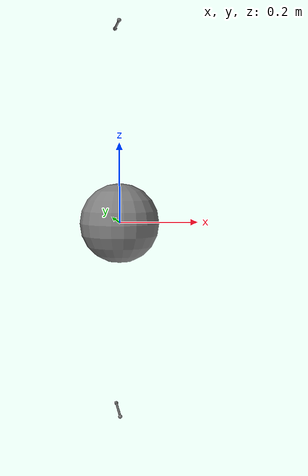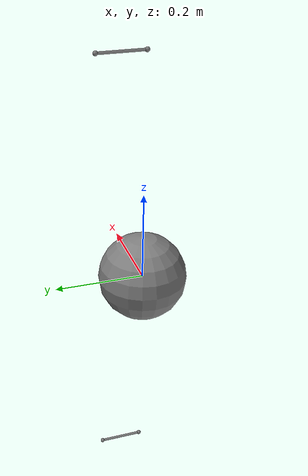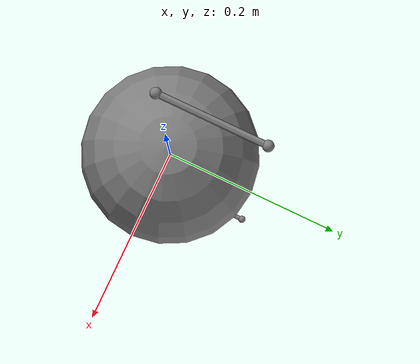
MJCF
<mujoco>
      <worldbody>
        <body name="b1" pos="0 0 0.5">
          <site name="s1" pos="0 0 0"/>
          <site name="s2" pos="0 0.1 0"/>
        </body>
        <body name="wrap" pos="0 0 0">
          <geom name="g1" type="sphere" size="0.1"/>
        </body>
        <body name="b2" pos="0 0 -0.5">
          <site name="s3" pos="0 0 0"/>
          <site name="s4" pos="0 0.1 0"/>
        </body>
      </worldbody>
      <tendon>
        <spatial name="bad">
          <site site="s1"/>
          <site site="s2"/>
          <pulley divisor="2"/>
          <geom geom="g1"/>
          <site site="s3"/>
          <site site="s4"/>
        </spatial>
      </tendon>
    </mujoco>
